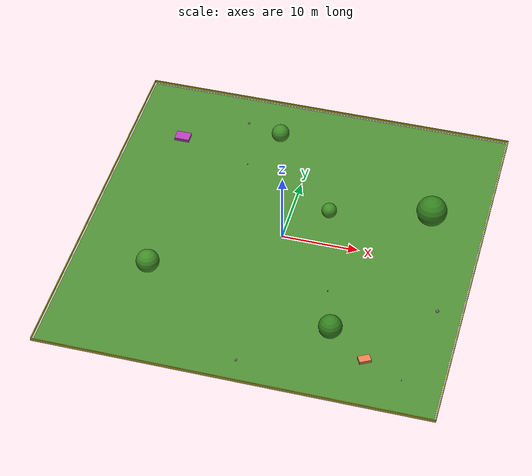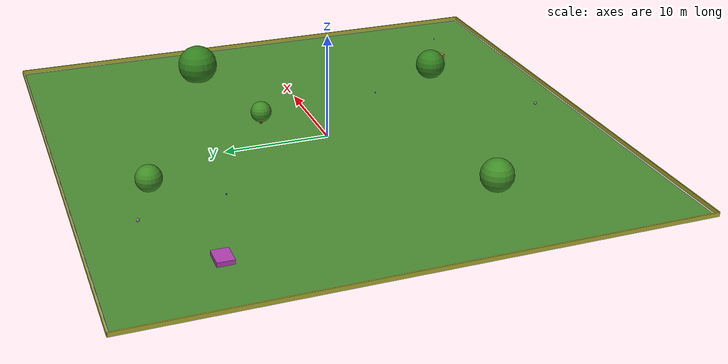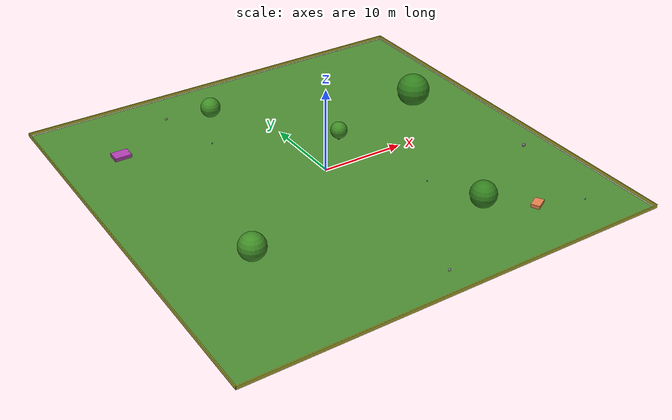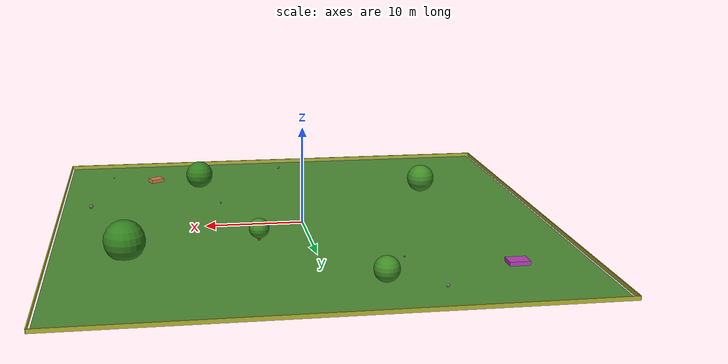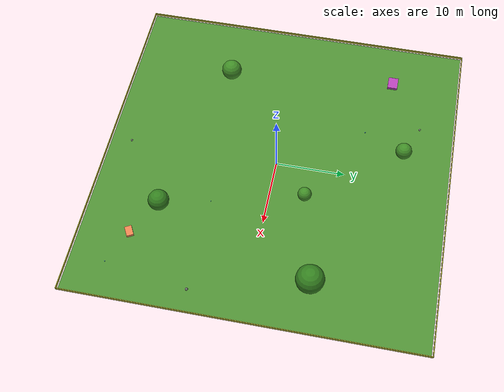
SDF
<?xml version="1.0" ?>
<sdf version="1.8">
  <world name="outdoor_grassland_50x50">

    <!-- 物理引擎 -->
    <physics name="fast_physics" type="ignored">
      <max_step_size>0.005</max_step_size>
      <real_time_factor>1.0</real_time_factor>
    </physics>

    <!-- Ignition 核心系统 -->
    <plugin filename="libignition-gazebo-physics-system.so" name="ignition::gazebo::systems::Physics"/>
    <plugin filename="libignition-gazebo-user-commands-system.so" name="ignition::gazebo::systems::UserCommands"/>
    <plugin filename="libignition-gazebo-scene-broadcaster-system.so" name="ignition::gazebo::systems::SceneBroadcaster"/>
    <plugin filename="libignition-gazebo-imu-system.so" name="ignition::gazebo::systems::Imu"/>
    <plugin filename="libignition-gazebo-sensors-system.so" name="ignition::gazebo::systems::Sensors">
      <render_engine>ogre</render_engine>
    </plugin>

    <!-- 太阳光（室外自然光照） -->
    <light type="directional" name="sun">
      <cast_shadows>true</cast_shadows>
      <pose>0 0 50 0 0 0</pose>
      <diffuse>0.9 0.9 0.85 1</diffuse>
      <specular>0.3 0.3 0.3 1</specular>
      <attenuation>
        <range>500</range>
        <constant>0.9</constant>
        <linear>0.01</linear>
        <quadratic>0.001</quadratic>
      </attenuation>
      <direction>-0.3 0.1 -0.95</direction>
    </light>

    <!-- 环境光补偿（室外阴影区域不要太黑） -->
    <scene>
      <ambient>0.4 0.4 0.5 1</ambient>
      <background>0.8 0.85 0.8 1</background>
      <shadows>true</shadows>
    </scene>

    <!-- 草地地面 (50m × 50m)                                          -->
    <model name="ground">
      <static>true</static>
      <pose>0 0 -0.05 0 0 0</pose>
      <link name="link">
        <collision name="collision">
          <geometry><box><size>50 50 0.1</size></box></geometry>
          <surface>
            <friction>
              <ode><mu>1.5</mu><mu2>1.5</mu2></ode>
            </friction>
          </surface>
        </collision>
        <visual name="visual">
          <geometry><box><size>50 50 0.1</size></box></geometry>
          <material>
            <ambient>0.25 0.45 0.15 1</ambient>   <!-- 草绿色 -->
            <diffuse>0.3 0.55 0.2 1</diffuse>
            <specular>0.05 0.05 0.05 1</specular>
          </material>
        </visual>
      </link>
    </model>

    <!-- 边界标识：低矮围栏/路沿 (非碰撞，纯视觉标记)                     -->
    <!-- 沿 x=-25, x=25, y=-25, y=25 放置                             -->
    <model name="boundary_north">
      <static>true</static>
      <pose>0 25.2 0.2 0 0 0</pose>
      <link name="link">
        <visual name="visual">
          <geometry><box><size>50.4 0.1 0.4</size></box></geometry>
          <material><ambient>0.7 0.7 0.2 1</ambient><diffuse>0.7 0.7 0.2 1</diffuse></material>
        </visual>
      </link>
    </model>
    <model name="boundary_south">
      <static>true</static>
      <pose>0 -25.2 0.2 0 0 0</pose>
      <link name="link">
        <visual name="visual">
          <geometry><box><size>50.4 0.1 0.4</size></box></geometry>
          <material><ambient>0.7 0.7 0.2 1</ambient><diffuse>0.7 0.7 0.2 1</diffuse></material>
        </visual>
      </link>
    </model>
    <model name="boundary_east">
      <static>true</static>
      <pose>25.2 0 0.2 0 0 0</pose>
      <link name="link">
        <visual name="visual">
          <geometry><box><size>0.1 50.4 0.4</size></box></geometry>
          <material><ambient>0.7 0.7 0.2 1</ambient><diffuse>0.7 0.7 0.2 1</diffuse></material>
        </visual>
      </link>
    </model>
    <model name="boundary_west">
      <static>true</static>
      <pose>-25.2 0 0.2 0 0 0</pose>
      <link name="link">
        <visual name="visual">
          <geometry><box><size>0.1 50.4 0.4</size></box></geometry>
          <material><ambient>0.7 0.7 0.2 1</ambient><diffuse>0.7 0.7 0.2 1</diffuse></material>
        </visual>
      </link>
    </model>

    <!-- 固定障碍物：树 × 5（圆柱体模拟）                                 -->

    <!-- 树1：左区域 -->
    <model name="tree_1">
      <static>true</static>
      <pose>-15 -10 0 0 0 0</pose>
      <link name="trunk">
        <collision name="collision">
          <geometry><cylinder><radius>0.2</radius><length>1.5</length></cylinder></geometry>
        </collision>
        <visual name="trunk_vis">
          <geometry><cylinder><radius>0.2</radius><length>1.5</length></cylinder></geometry>
          <material><ambient>0.4 0.2 0.1 1</ambient><diffuse>0.5 0.25 0.1 1</diffuse></material>
        </visual>
        <visual name="canopy_vis">
          <pose>0 0 1.5 0 0 0</pose>
          <geometry><sphere><radius>1.5</radius></sphere></geometry>
          <material><ambient>0.2 0.5 0.1 1</ambient><diffuse>0.25 0.55 0.15 1</diffuse></material>
        </visual>
      </link>
    </model>

    <!-- 树2：右区域 -->
    <model name="tree_2">
      <static>true</static>
      <pose>18 8 0 0 0 0</pose>
      <link name="trunk">
        <collision name="collision">
          <geometry><cylinder><radius>0.25</radius><length>1.5</length></cylinder></geometry>
        </collision>
        <visual name="trunk_vis">
          <geometry><cylinder><radius>0.25</radius><length>1.5</length></cylinder></geometry>
          <material><ambient>0.4 0.2 0.1 1</ambient><diffuse>0.5 0.25 0.1 1</diffuse></material>
        </visual>
        <visual name="canopy_vis">
          <pose>0 0 1.5 0 0 0</pose>
          <geometry><sphere><radius>2.0</radius></sphere></geometry>
          <material><ambient>0.15 0.45 0.1 1</ambient><diffuse>0.2 0.5 0.12 1</diffuse></material>
        </visual>
      </link>
    </model>

    <!-- 树3：左上 -->
    <model name="tree_3">
      <static>true</static>
      <pose>-5 18 0 0 0 0</pose>
      <link name="trunk">
        <collision name="collision">
          <geometry><cylinder><radius>0.15</radius><length>1.2</length></cylinder></geometry>
        </collision>
        <visual name="trunk_vis">
          <geometry><cylinder><radius>0.15</radius><length>1.2</length></cylinder></geometry>
          <material><ambient>0.4 0.2 0.1 1</ambient><diffuse>0.5 0.25 0.1 1</diffuse></material>
        </visual>
        <visual name="canopy_vis">
          <pose>0 0 1.2 0 0 0</pose>
          <geometry><sphere><radius>1.2</radius></sphere></geometry>
          <material><ambient>0.2 0.5 0.1 1</ambient><diffuse>0.25 0.55 0.15 1</diffuse></material>
        </visual>
      </link>
    </model>

    <!-- 树4：右下 -->
    <model name="tree_4">
      <static>true</static>
      <pose>10 -15 0 0 0 0</pose>
      <link name="trunk">
        <collision name="collision">
          <geometry><cylinder><radius>0.2</radius><length>1.5</length></cylinder></geometry>
        </collision>
        <visual name="trunk_vis">
          <geometry><cylinder><radius>0.2</radius><length>1.5</length></cylinder></geometry>
          <material><ambient>0.4 0.2 0.1 1</ambient><diffuse>0.5 0.25 0.1 1</diffuse></material>
        </visual>
        <visual name="canopy_vis">
          <pose>0 0 1.5 0 0 0</pose>
          <geometry><sphere><radius>1.5</radius></sphere></geometry>
          <material><ambient>0.15 0.45 0.1 1</ambient><diffuse>0.2 0.5 0.12 1</diffuse></material>
        </visual>
      </link>
    </model>

    <!-- 树5：中间偏右 -->
    <model name="tree_5">
      <static>true</static>
      <pose>5 5 0 0 0 0</pose>
      <link name="trunk">
        <collision name="collision">
          <geometry><cylinder><radius>0.15</radius><length>1.2</length></cylinder></geometry>
        </collision>
        <visual name="trunk_vis">
          <geometry><cylinder><radius>0.15</radius><length>1.2</length></cylinder></geometry>
          <material><ambient>0.4 0.2 0.1 1</ambient><diffuse>0.5 0.25 0.1 1</diffuse></material>
        </visual>
        <visual name="canopy_vis">
          <pose>0 0 1.2 0 0 0</pose>
          <geometry><sphere><radius>1.0</radius></sphere></geometry>
          <material><ambient>0.2 0.5 0.1 1</ambient><diffuse>0.25 0.55 0.15 1</diffuse></material>
        </visual>
      </link>
    </model>

    <!-- 固定障碍物：花坛（矩形矮盒）                                    -->
    <model name="flowerbed_1">
      <static>true</static>
      <pose>-18 15 0.2 0 0 0</pose>
      <link name="link">
        <collision name="collision">
          <geometry><box><size>2.0 1.5 0.4</size></box></geometry>
        </collision>
        <visual name="visual">
          <geometry><box><size>2.0 1.5 0.4</size></box></geometry>
          <material>
            <ambient>0.6 0.2 0.6 1</ambient>
            <diffuse>0.7 0.25 0.7 1</diffuse>
          </material>
        </visual>
      </link>
    </model>

    <model name="flowerbed_2">
      <static>true</static>
      <pose>15 -18 0.2 0 0 0.5</pose>
      <link name="link">
        <collision name="collision">
          <geometry><box><size>1.5 1.0 0.4</size></box></geometry>
        </collision>
        <visual name="visual">
          <geometry><box><size>1.5 1.0 0.4</size></box></geometry>
          <material>
            <ambient>0.8 0.4 0.2 1</ambient>
            <diffuse>0.9 0.5 0.3 1</diffuse>
          </material>
        </visual>
      </link>
    </model>

    <!-- 固定障碍物：石头（矮球体）                                      -->
    <model name="rock_1">
      <static>true</static>
      <pose>-10 20 0.15 0 0 0</pose>
      <link name="link">
        <collision name="collision">
          <geometry><sphere><radius>0.15</radius></sphere></geometry>
        </collision>
        <visual name="visual">
          <geometry><sphere><radius>0.15</radius></sphere></geometry>
          <material>
            <ambient>0.4 0.4 0.4 1</ambient>
            <diffuse>0.5 0.5 0.5 1</diffuse>
          </material>
        </visual>
      </link>
    </model>

    <model name="rock_2">
      <static>true</static>
      <pose>22 -8 0.2 0 0 0</pose>
      <link name="link">
        <collision name="collision">
          <geometry><sphere><radius>0.2</radius></sphere></geometry>
        </collision>
        <visual name="visual">
          <geometry><sphere><radius>0.2</radius></sphere></geometry>
          <material>
            <ambient>0.35 0.35 0.35 1</ambient>
            <diffuse>0.45 0.45 0.45 1</diffuse>
          </material>
        </visual>
      </link>
    </model>

    <model name="rock_3">
      <static>true</static>
      <pose>0 -22 0.15 0 0 0</pose>
      <link name="link">
        <collision name="collision">
          <geometry><sphere><radius>0.15</radius></sphere></geometry>
        </collision>
        <visual name="visual">
          <geometry><sphere><radius>0.15</radius></sphere></geometry>
          <material>
            <ambient>0.4 0.4 0.4 1</ambient>
            <diffuse>0.5 0.5 0.5 1</diffuse>
          </material>
        </visual>
      </link>
    </model>

    <!-- 固定障碍物：喷灌头（小圆柱）                                    -->
    <model name="sprinkler_1">
      <static>true</static>
      <pose>8 -8 0.08 0 0 0</pose>
      <link name="link">
        <collision name="collision">
          <geometry><cylinder><radius>0.05</radius><length>0.15</length></cylinder></geometry>
        </collision>
        <visual name="visual">
          <geometry><cylinder><radius>0.05</radius><length>0.15</length></cylinder></geometry>
          <material>
            <ambient>0.2 0.6 0.8 1</ambient>
            <diffuse>0.25 0.65 0.9 1</diffuse>
          </material>
        </visual>
      </link>
    </model>

    <model name="sprinkler_2">
      <static>true</static>
      <pose>-8 12 0.08 0 0 0</pose>
      <link name="link">
        <collision name="collision">
          <geometry><cylinder><radius>0.05</radius><length>0.15</length></cylinder></geometry>
        </collision>
        <visual name="visual">
          <geometry><cylinder><radius>0.05</radius><length>0.15</length></cylinder></geometry>
          <material>
            <ambient>0.2 0.6 0.8 1</ambient>
            <diffuse>0.25 0.65 0.9 1</diffuse>
          </material>
        </visual>
      </link>
    </model>

    <model name="sprinkler_3">
      <static>true</static>
      <pose>20 -20 0.08 0 0 0</pose>
      <link name="link">
        <collision name="collision">
          <geometry><cylinder><radius>0.05</radius><length>0.15</length></cylinder></geometry>
        </collision>
        <visual name="visual">
          <geometry><cylinder><radius>0.05</radius><length>0.15</length></cylinder></geometry>
          <material>
            <ambient>0.2 0.6 0.8 1</ambient>
            <diffuse>0.25 0.65 0.9 1</diffuse>
          </material>
        </visual>
      </link>
    </model>

  </world>
</sdf>
